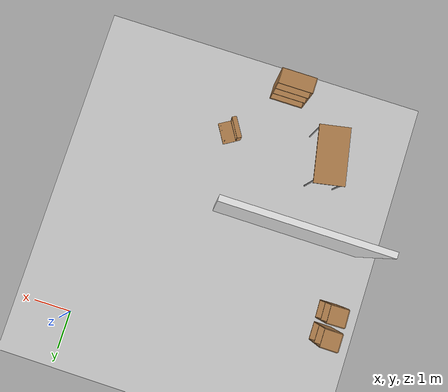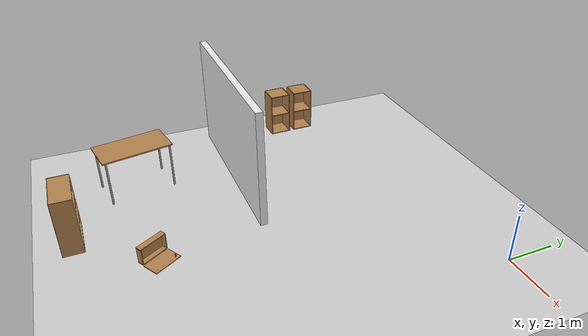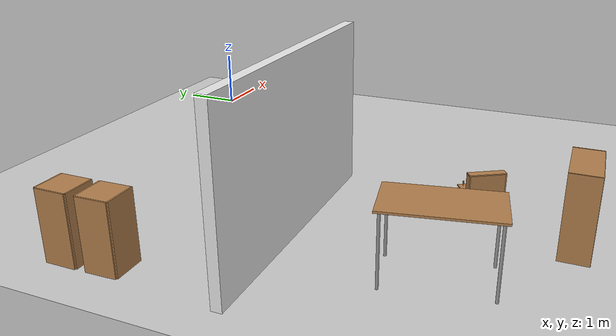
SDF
<sdf version="1.6">
 <world name="default">
  <model name="ground_plane">
   <static>1</static>
   <link name="link">
    <collision name="collision">
     <geometry><plane><normal>0 0 1</normal><size>100 100</size></plane></geometry>
     <surface>
      <contact><collide_bitmask>65535</collide_bitmask></contact>
      <friction><ode><mu>100</mu><mu2>50</mu2></ode></friction>
     </surface>
    </collision>
    <visual name="visual">
     <cast_shadows>0</cast_shadows>
     <geometry><plane><normal>0 0 1</normal><size>100 100</size></plane></geometry>
     <material>
      <script><uri>file://media/materials/scripts/gazebo.material</uri><name>Gazebo/Grey</name></script>
     </material>
    </visual>
   </link>
  </model>
  <model name="table_3">
   <static>1</static>
   <link name="link">
    <collision name="surface">
     <pose>0 0 1 0 -0 0</pose>
     <geometry><box><size>1.5 0.8 0.03</size></box></geometry>
     <surface><friction><ode><mu>0.6</mu><mu2>0.6</mu2></ode></friction></surface>
    </collision>
    <visual name="visual1">
     <pose>0 0 1 0 -0 0</pose>
     <geometry><box><size>1.5 0.8 0.03</size></box></geometry>
     <material>
      <script><uri>file://media/materials/scripts/gazebo.material</uri><name>Gazebo/Wood</name></script>
     </material>
    </visual>
    <collision name="front_left_leg">
     <pose>0.68 0.38 0.5 0 -0 0</pose>
     <geometry><cylinder><radius>0.02</radius><length>1</length></cylinder></geometry>
    </collision>
    <visual name="front_left_leg">
     <pose>0.68 0.38 0.5 0 -0 0</pose>
     <geometry><cylinder><radius>0.02</radius><length>1</length></cylinder></geometry>
     <material>
      <script><uri>file://media/materials/scripts/gazebo.material</uri><name>Gazebo/Grey</name></script>
     </material>
    </visual>
    <collision name="front_right_leg">
     <pose>0.68 -0.38 0.5 0 -0 0</pose>
     <geometry><cylinder><radius>0.02</radius><length>1</length></cylinder></geometry>
    </collision>
    <visual name="front_right_leg">
     <pose>0.68 -0.38 0.5 0 -0 0</pose>
     <geometry><cylinder><radius>0.02</radius><length>1</length></cylinder></geometry>
     <material>
      <script><uri>file://media/materials/scripts/gazebo.material</uri><name>Gazebo/Grey</name></script>
     </material>
    </visual>
    <collision name="back_right_leg">
     <pose>-0.68 -0.38 0.5 0 -0 0</pose>
     <geometry><cylinder><radius>0.02</radius><length>1</length></cylinder></geometry>
    </collision>
    <visual name="back_right_leg">
     <pose>-0.68 -0.38 0.5 0 -0 0</pose>
     <geometry><cylinder><radius>0.02</radius><length>1</length></cylinder></geometry>
     <material>
      <script><uri>file://media/materials/scripts/gazebo.material</uri><name>Gazebo/Grey</name></script>
     </material>
    </visual>
    <collision name="back_left_leg">
     <pose>-0.68 0.38 0.5 0 -0 0</pose>
     <geometry><cylinder><radius>0.02</radius><length>1</length></cylinder></geometry>
    </collision>
    <visual name="back_left_leg">
     <pose>-0.68 0.38 0.5 0 -0 0</pose>
     <geometry><cylinder><radius>0.02</radius><length>1</length></cylinder></geometry>
     <material>
      <script><uri>file://media/materials/scripts/gazebo.material</uri><name>Gazebo/Grey</name></script>
     </material>
    </visual>
   </link>
   <pose>-5.14548 -5.86576 0 0 0 -1.38337</pose>
  </model>
  <model name="wooden_case_wooden_peg">
   <link name="wooden_case::base">
    <pose>0 0 0.024 0 -0 0</pose>
    <inertial>
     <pose>-0.022184 0 0.171592 0 -0 0</pose>
     <mass>3.96264</mass>
     <inertia>
      <ixx>0.213536</ixx>
      <ixy>0</ixy>
      <ixz>0.000779377</ixz>
      <iyy>0.0708943</iyy>
      <iyz>0</iyz>
      <izz>0.154604</izz>
     </inertia>
    </inertial>
    <collision name="collision_back">
     <pose>-0.053975 0 0.1778 0 -0 0</pose>
     <geometry><box><size>0.01905 0.5461 0.3175</size></box></geometry>
     <surface>
      <contact>
       <poissons_ratio>0.347</poissons_ratio>
       <elastic_modulus>8.8e+09</elastic_modulus>
       <ode><kp>100000</kp><kd>100</kd><max_vel>100</max_vel><min_depth>0.001</min_depth></ode>
      </contact>
      <friction>
       <torsional>
        <coefficient>1</coefficient>
        <use_patch_radius>0</use_patch_radius>
        <surface_radius>0.01</surface_radius>
       </torsional>
      </friction>
     </surface>
    </collision>
    <visual name="visual_back">
     <pose>-0.053975 0 0.1778 0 -0 0</pose>
     <geometry><box><size>0.01905 0.5461 0.3175</size></box></geometry>
     <material>
      <script><uri>file://media/materials/scripts/gazebo.material</uri><name>Gazebo/Wood</name></script>
     </material>
    </visual>
    <collision name="collision_bottom">
     <pose>0 0 0.009525 0 -0 0</pose>
     <geometry><box><size>0.127 0.5842 0.01905</size></box></geometry>
     <surface>
      <contact>
       <poissons_ratio>0.347</poissons_ratio>
       <elastic_modulus>8.8e+09</elastic_modulus>
       <ode><kp>100000</kp><kd>100</kd><max_vel>100</max_vel><min_depth>0.001</min_depth></ode>
      </contact>
      <friction>
       <torsional>
        <coefficient>1</coefficient>
        <use_patch_radius>0</use_patch_radius>
        <surface_radius>0.01</surface_radius>
       </torsional>
      </friction>
     </surface>
    </collision>
    <visual name="visual_bottom">
     <pose>0 0 0.009525 0 -0 0</pose>
     <geometry><box><size>0.127 0.5842 0.01905</size></box></geometry>
     <material>
      <script><uri>file://media/materials/scripts/gazebo.material</uri><name>Gazebo/Wood</name></script>
     </material>
    </visual>
    <collision name="collision_top">
     <pose>0 0 0.346075 0 -0 0</pose>
     <geometry><box><size>0.127 0.5842 0.01905</size></box></geometry>
     <surface>
      <contact>
       <poissons_ratio>0.347</poissons_ratio>
       <elastic_modulus>8.8e+09</elastic_modulus>
       <ode><kp>100000</kp><kd>100</kd><max_vel>100</max_vel><min_depth>0.001</min_depth></ode>
      </contact>
      <friction>
       <torsional>
        <coefficient>1</coefficient>
        <use_patch_radius>0</use_patch_radius>
        <surface_radius>0.01</surface_radius>
       </torsional>
      </friction>
     </surface>
    </collision>
    <visual name="visual_top">
     <pose>0 0 0.346075 0 -0 0</pose>
     <geometry><box><size>0.127 0.5842 0.01905</size></box></geometry>
     <material>
      <script><uri>file://media/materials/scripts/gazebo.material</uri><name>Gazebo/Wood</name></script>
     </material>
    </visual>
    <collision name="collision_left">
     <pose>0 -0.282575 0.1778 0 -0 0</pose>
     <geometry><box><size>0.127 0.01905 0.3175</size></box></geometry>
     <surface>
      <contact>
       <poissons_ratio>0.347</poissons_ratio>
       <elastic_modulus>8.8e+09</elastic_modulus>
       <ode><kp>100000</kp><kd>100</kd><max_vel>100</max_vel><min_depth>0.001</min_depth></ode>
      </contact>
      <friction>
       <torsional>
        <coefficient>1</coefficient>
        <use_patch_radius>0</use_patch_radius>
        <surface_radius>0.01</surface_radius>
       </torsional>
      </friction>
     </surface>
    </collision>
    <visual name="visual_left">
     <pose>0 -0.282575 0.1778 0 -0 0</pose>
     <geometry><box><size>0.127 0.01905 0.3175</size></box></geometry>
     <material>
      <script><uri>file://media/materials/scripts/gazebo.material</uri><name>Gazebo/Wood</name></script>
     </material>
    </visual>
    <collision name="collision_right">
     <pose>0 0.282575 0.1778 0 -0 0</pose>
     <geometry><box><size>0.127 0.01905 0.3175</size></box></geometry>
     <surface>
      <contact>
       <poissons_ratio>0.347</poissons_ratio>
       <elastic_modulus>8.8e+09</elastic_modulus>
       <ode><kp>100000</kp><kd>100</kd><max_vel>100</max_vel><min_depth>0.001</min_depth></ode>
      </contact>
      <friction>
       <torsional>
        <coefficient>1</coefficient>
        <use_patch_radius>0</use_patch_radius>
        <surface_radius>0.01</surface_radius>
       </torsional>
      </friction>
     </surface>
    </collision>
    <visual name="visual_right">
     <pose>0 0.282575 0.1778 0 -0 0</pose>
     <geometry><box><size>0.127 0.01905 0.3175</size></box></geometry>
     <material>
      <script><uri>file://media/materials/scripts/gazebo.material</uri><name>Gazebo/Wood</name></script>
     </material>
    </visual>
    <collision name="collision_block_left">
     <pose>0.0095 -0.2151 -0.012 0 -0 0</pose>
     <geometry><box><size>0.108 0.05 0.024</size></box></geometry>
     <surface>
      <contact>
       <poissons_ratio>0.347</poissons_ratio>
       <elastic_modulus>8.8e+09</elastic_modulus>
       <ode><kp>100000</kp><kd>100</kd><max_vel>100</max_vel><min_depth>0.001</min_depth></ode>
      </contact>
      <friction>
       <torsional>
        <coefficient>1</coefficient>
        <use_patch_radius>0</use_patch_radius>
        <surface_radius>0.01</surface_radius>
       </torsional>
      </friction>
     </surface>
    </collision>
    <visual name="visual_block_left">
     <pose>0.0095 -0.2151 -0.012 0 -0 0</pose>
     <geometry><box><size>0.108 0.05 0.024</size></box></geometry>
     <material>
      <script><uri>file://media/materials/scripts/gazebo.material</uri><name>Gazebo/Wood</name></script>
     </material>
    </visual>
    <collision name="collision_block_right">
     <pose>0.0095 0.2151 -0.012 0 -0 0</pose>
     <geometry><box><size>0.108 0.05 0.024</size></box></geometry>
     <surface>
      <contact>
       <poissons_ratio>0.347</poissons_ratio>
       <elastic_modulus>8.8e+09</elastic_modulus>
       <ode><kp>100000</kp><kd>100</kd><max_vel>100</max_vel><min_depth>0.001</min_depth></ode>
      </contact>
      <friction>
       <torsional>
        <coefficient>1</coefficient>
        <use_patch_radius>0</use_patch_radius>
        <surface_radius>0.01</surface_radius>
       </torsional>
      </friction>
     </surface>
    </collision>
    <visual name="visual_block_right">
     <pose>0.0095 0.2151 -0.012 0 -0 0</pose>
     <geometry><box><size>0.108 0.05 0.024</size></box></geometry>
     <material>
      <script><uri>file://media/materials/scripts/gazebo.material</uri><name>Gazebo/Wood</name></script>
     </material>
    </visual>
   </link>
   <link name="wooden_case::lid">
    <pose>0.243775 0 0.009525 0 -0 0</pose>
    <inertial>
     <mass>1.97874</mass>
     <inertia>
      <ixx>0.0563367</ixx>
      <ixy>0</ixy>
      <ixz>0</ixz>
      <iyy>0.020911</iyy>
      <iyz>0</iyz>
      <izz>0.0771281</izz>
     </inertia>
    </inertial>
    <collision name="collision">
     <geometry><box><size>0.3556 0.5842 0.01905</size></box></geometry>
     <surface>
      <contact>
       <poissons_ratio>0.347</poissons_ratio>
       <elastic_modulus>8.8e+09</elastic_modulus>
       <ode><kp>100000</kp><kd>100</kd><max_vel>100</max_vel><min_depth>0.001</min_depth></ode>
      </contact>
      <friction>
       <torsional>
        <coefficient>1</coefficient>
        <use_patch_radius>0</use_patch_radius>
        <surface_radius>0.01</surface_radius>
       </torsional>
      </friction>
     </surface>
    </collision>
    <visual name="visual">
     <geometry><box><size>0.3556 0.5842 0.01905</size></box></geometry>
     <material>
      <script><uri>file://media/materials/scripts/gazebo.material</uri><name>Gazebo/Wood</name></script>
     </material>
    </visual>
    <visual name="tee_nut_1">
     <pose>0.122 -0.216 0 0 -0 0</pose>
     <geometry><cylinder><radius>0.00635</radius><length>0.0192405</length></cylinder></geometry>
     <material>
      <script><uri>file://media/materials/scripts/gazebo.material</uri><name>Gazebo/Grey</name></script>
     </material>
    </visual>
    <visual name="tee_nut_2">
     <pose>0.122 -0.088 0 0 -0 0</pose>
     <geometry><cylinder><radius>0.00635</radius><length>0.0192405</length></cylinder></geometry>
     <material>
      <script><uri>file://media/materials/scripts/gazebo.material</uri><name>Gazebo/Grey</name></script>
     </material>
    </visual>
    <visual name="tee_nut_3">
     <pose>0.122 0.088 0 0 -0 0</pose>
     <geometry><cylinder><radius>0.00635</radius><length>0.0192405</length></cylinder></geometry>
     <material>
      <script><uri>file://media/materials/scripts/gazebo.material</uri><name>Gazebo/Grey</name></script>
     </material>
    </visual>
    <visual name="tee_nut_4">
     <pose>0.122 0.216 0 0 -0 0</pose>
     <geometry><cylinder><radius>0.00635</radius><length>0.0192405</length></cylinder></geometry>
     <material>
      <script><uri>file://media/materials/scripts/gazebo.material</uri><name>Gazebo/Grey</name></script>
     </material>
    </visual>
   </link>
   <joint name="wooden_case::lid_hinge" type="revolute">
    <pose>-0.1778 0 0.01905 0 -0 0</pose>
    <parent>wooden_case::base</parent>
    <child>wooden_case::lid</child>
    <axis>
     <xyz>0 1 0</xyz>
     <limit><upper>0.523599</upper><lower>-1.5708</lower></limit>
     <dynamics><spring_reference>0</spring_reference><spring_stiffness>0</spring_stiffness></dynamics>
    </axis>
   </joint>
   <link name="peg::link">
    <pose>0.365774 0.216 0.05905 0 -0 0</pose>
    <inertial>
     <mass>0.0175</mass>
     <inertia>
      <ixx>9.74923e-06</ixx>
      <ixy>0</ixy>
      <ixz>0</ixz>
      <iyy>9.74923e-06</iyy>
      <iyz>0</iyz>
      <izz>8.31797e-07</izz>
     </inertia>
    </inertial>
    <collision name="collision">
     <geometry><cylinder><radius>0.00975</radius><length>0.08</length></cylinder></geometry>
     <surface>
      <contact>
       <poissons_ratio>0.347</poissons_ratio>
       <elastic_modulus>8.8e+09</elastic_modulus>
       <ode><kp>100000</kp><kd>100</kd><max_vel>100</max_vel><min_depth>0.001</min_depth></ode>
      </contact>
      <friction>
       <torsional>
        <coefficient>1</coefficient>
        <use_patch_radius>0</use_patch_radius>
        <surface_radius>0.01</surface_radius>
       </torsional>
      </friction>
     </surface>
    </collision>
    <visual name="visual">
     <geometry><cylinder><radius>0.00975</radius><length>0.08</length></cylinder></geometry>
     <material>
      <script><uri>file://media/materials/scripts/gazebo.material</uri><name>Gazebo/Wood</name></script>
     </material>
    </visual>
   </link>
   <joint name="case_peg" type="revolute">
    <child>peg::link</child>
    <parent>wooden_case::lid</parent>
    <axis>
     <xyz>0 0 1</xyz>
     <limit><upper>0</upper><lower>0</lower></limit>
     <dynamics><spring_reference>0</spring_reference><spring_stiffness>0</spring_stiffness></dynamics>
    </axis>
   </joint>
   <pose>-2.6749 -5.99193 -0.001058 -1e-06 -0.000498 0.544065</pose>
  </model>
  <model name="bookshelf_clone_clone_clone">
   <static>1</static>
   <link name="link">
    <inertial><mass>1</mass></inertial>
    <collision name="back">
     <pose>0 0.005 0.6 0 -0 0</pose>
     <geometry><box><size>0.9 0.01 1.2</size></box></geometry>
    </collision>
    <visual name="visual1">
     <pose>0 0.005 0.6 0 -0 0</pose>
     <geometry><box><size>0.9 0.01 1.2</size></box></geometry>
     <material>
      <script><uri>file://media/materials/scripts/gazebo.material</uri><name>Gazebo/Wood</name></script>
     </material>
    </visual>
    <collision name="left_side">
     <pose>0.45 -0.195 0.6 0 -0 0</pose>
     <geometry><box><size>0.02 0.4 1.2</size></box></geometry>
    </collision>
    <visual name="visual2">
     <pose>0.45 -0.195 0.6 0 -0 0</pose>
     <geometry><box><size>0.02 0.4 1.2</size></box></geometry>
     <material>
      <script><uri>file://media/materials/scripts/gazebo.material</uri><name>Gazebo/Wood</name></script>
     </material>
    </visual>
    <collision name="right_side">
     <pose>-0.45 -0.195 0.6 0 -0 0</pose>
     <geometry><box><size>0.02 0.4 1.2</size></box></geometry>
    </collision>
    <visual name="visual3">
     <pose>-0.45 -0.195 0.6 0 -0 0</pose>
     <geometry><box><size>0.02 0.4 1.2</size></box></geometry>
     <material>
      <script><uri>file://media/materials/scripts/gazebo.material</uri><name>Gazebo/Wood</name></script>
     </material>
    </visual>
    <collision name="bottom">
     <pose>0 -0.195 0.03 0 -0 0</pose>
     <geometry><box><size>0.88 0.4 0.06</size></box></geometry>
    </collision>
    <visual name="visual4">
     <pose>0 -0.195 0.03 0 -0 0</pose>
     <geometry><box><size>0.88 0.4 0.06</size></box></geometry>
     <material>
      <script><uri>file://media/materials/scripts/gazebo.material</uri><name>Gazebo/Wood</name></script>
     </material>
    </visual>
    <collision name="top">
     <pose>0 -0.195 1.19 0 -0 0</pose>
     <geometry><box><size>0.88 0.4 0.02</size></box></geometry>
    </collision>
    <visual name="visual5">
     <pose>0 -0.195 1.19 0 -0 0</pose>
     <geometry><box><size>0.88 0.4 0.02</size></box></geometry>
     <material>
      <script><uri>file://media/materials/scripts/gazebo.material</uri><name>Gazebo/Wood</name></script>
     </material>
    </visual>
    <collision name="low_shelf">
     <pose>0 -0.195 0.43 0 -0 0</pose>
     <geometry><box><size>0.88 0.4 0.02</size></box></geometry>
    </collision>
    <visual name="visual6">
     <pose>0 -0.195 0.43 0 -0 0</pose>
     <geometry><box><size>0.88 0.4 0.02</size></box></geometry>
     <material>
      <script><uri>file://media/materials/scripts/gazebo.material</uri><name>Gazebo/Wood</name></script>
     </material>
    </visual>
    <collision name="high_shelf">
     <pose>0 -0.195 0.8 0 -0 0</pose>
     <geometry><box><size>0.88 0.4 0.02</size></box></geometry>
    </collision>
    <visual name="visual7">
     <pose>0 -0.195 0.8 0 -0 0</pose>
     <geometry><box><size>0.88 0.4 0.02</size></box></geometry>
     <material>
      <script><uri>file://media/materials/scripts/gazebo.material</uri><name>Gazebo/Wood</name></script>
     </material>
    </visual>
   </link>
   <pose>-3.74721 -7.53362 0 0 -0 3.14159</pose>
  </model>
  <model name="cabinet_clone_1">
   <static>1</static>
   <link name="cabinet_bottom_plate">
    <inertial>
     <pose>0 0 -1 0 -0 0</pose>
     <inertia><ixx>2.05</ixx><ixy>0</ixy><ixz>0</ixz><iyy>2.05</iyy><iyz>0</iyz><izz>2.05</izz></inertia>
     <mass>25</mass>
    </inertial>
    <collision name="cabinet_bottom_plate_geom">
     <pose>0 0 0.01 0 -0 0</pose>
     <geometry><box><size>0.45 0.45 0.02</size></box></geometry>
    </collision>
    <visual name="cabinet_bottom_plate_geom_visual">
     <pose>0 0 0.01 0 -0 0</pose>
     <geometry><box><size>0.45 0.45 0.02</size></box></geometry>
     <material>
      <script><uri>file://media/materials/scripts/gazebo.material</uri><name>Gazebo/Wood</name></script>
     </material>
    </visual>
    <collision name="cabinet_bottom_plate_geom_cabinet_back_plate">
     <pose>0.235 0 0.51 0 -0 0</pose>
     <geometry><box><size>0.02 0.45 1.02</size></box></geometry>
    </collision>
    <visual name="cabinet_bottom_plate_geom_cabinet_back_plate_visual">
     <pose>0.235 0 0.51 0 -0 0</pose>
     <geometry><box><size>0.02 0.45 1.02</size></box></geometry>
     <material>
      <script><uri>file://media/materials/scripts/gazebo.material</uri><name>Gazebo/Wood</name></script>
     </material>
    </visual>
    <collision name="cabinet_bottom_plate_geom_cabinet_left_plate">
     <pose>0 0.235 0.51 0 -0 0</pose>
     <geometry><box><size>0.45 0.02 1.02</size></box></geometry>
    </collision>
    <visual name="cabinet_bottom_plate_geom_cabinet_left_plate_visual">
     <pose>0 0.235 0.51 0 -0 0</pose>
     <geometry><box><size>0.45 0.02 1.02</size></box></geometry>
     <material>
      <script><uri>file://media/materials/scripts/gazebo.material</uri><name>Gazebo/Wood</name></script>
     </material>
    </visual>
    <collision name="cabinet_bottom_plate_geom_cabinet_middle_plate">
     <pose>0 0 0.51 0 -0 0</pose>
     <geometry><box><size>0.45 0.45 0.02</size></box></geometry>
    </collision>
    <visual name="cabinet_bottom_plate_geom_cabinet_middle_plate_visual">
     <pose>0 0 0.51 0 -0 0</pose>
     <geometry><box><size>0.45 0.45 0.02</size></box></geometry>
     <material>
      <script><uri>file://media/materials/scripts/gazebo.material</uri><name>Gazebo/Wood</name></script>
     </material>
    </visual>
    <collision name="cabinet_bottom_plate_geom_cabinet_right_plate">
     <pose>0 -0.235 0.51 0 -0 0</pose>
     <geometry><box><size>0.45 0.02 1.02</size></box></geometry>
    </collision>
    <visual name="cabinet_bottom_plate_geom_cabinet_right_plate_visual">
     <pose>0 -0.235 0.51 0 -0 0</pose>
     <geometry><box><size>0.45 0.02 1.02</size></box></geometry>
     <material>
      <script><uri>file://media/materials/scripts/gazebo.material</uri><name>Gazebo/Wood</name></script>
     </material>
    </visual>
    <collision name="cabinet_bottom_plate_geom_cabinet_top_plate">
     <pose>0 0 1.01 0 -0 0</pose>
     <geometry><box><size>0.45 0.45 0.02</size></box></geometry>
    </collision>
    <visual name="cabinet_bottom_plate_geom_cabinet_top_plate_visual">
     <pose>0 0 1.01 0 -0 0</pose>
     <geometry><box><size>0.45 0.45 0.02</size></box></geometry>
     <material>
      <script><uri>file://media/materials/scripts/gazebo.material</uri><name>Gazebo/Wood</name></script>
     </material>
    </visual>
   </link>
   <pose>-6.41626 -2.11223 0 0 0 -3.11673</pose>
  </model>
  <model name="cabinet_clone_1_clone">
   <static>1</static>
   <link name="cabinet_bottom_plate">
    <inertial>
     <pose>0 0 -1 0 -0 0</pose>
     <inertia><ixx>2.05</ixx><ixy>0</ixy><ixz>0</ixz><iyy>2.05</iyy><iyz>0</iyz><izz>2.05</izz></inertia>
     <mass>25</mass>
    </inertial>
    <collision name="cabinet_bottom_plate_geom">
     <pose>0 0 0.01 0 -0 0</pose>
     <geometry><box><size>0.45 0.45 0.02</size></box></geometry>
    </collision>
    <visual name="cabinet_bottom_plate_geom_visual">
     <pose>0 0 0.01 0 -0 0</pose>
     <geometry><box><size>0.45 0.45 0.02</size></box></geometry>
     <material>
      <script><uri>file://media/materials/scripts/gazebo.material</uri><name>Gazebo/Wood</name></script>
     </material>
    </visual>
    <collision name="cabinet_bottom_plate_geom_cabinet_back_plate">
     <pose>0.235 0 0.51 0 -0 0</pose>
     <geometry><box><size>0.02 0.45 1.02</size></box></geometry>
    </collision>
    <visual name="cabinet_bottom_plate_geom_cabinet_back_plate_visual">
     <pose>0.235 0 0.51 0 -0 0</pose>
     <geometry><box><size>0.02 0.45 1.02</size></box></geometry>
     <material>
      <script><uri>file://media/materials/scripts/gazebo.material</uri><name>Gazebo/Wood</name></script>
     </material>
    </visual>
    <collision name="cabinet_bottom_plate_geom_cabinet_left_plate">
     <pose>0 0.235 0.51 0 -0 0</pose>
     <geometry><box><size>0.45 0.02 1.02</size></box></geometry>
    </collision>
    <visual name="cabinet_bottom_plate_geom_cabinet_left_plate_visual">
     <pose>0 0.235 0.51 0 -0 0</pose>
     <geometry><box><size>0.45 0.02 1.02</size></box></geometry>
     <material>
      <script><uri>file://media/materials/scripts/gazebo.material</uri><name>Gazebo/Wood</name></script>
     </material>
    </visual>
    <collision name="cabinet_bottom_plate_geom_cabinet_middle_plate">
     <pose>0 0 0.51 0 -0 0</pose>
     <geometry><box><size>0.45 0.45 0.02</size></box></geometry>
    </collision>
    <visual name="cabinet_bottom_plate_geom_cabinet_middle_plate_visual">
     <pose>0 0 0.51 0 -0 0</pose>
     <geometry><box><size>0.45 0.45 0.02</size></box></geometry>
     <material>
      <script><uri>file://media/materials/scripts/gazebo.material</uri><name>Gazebo/Wood</name></script>
     </material>
    </visual>
    <collision name="cabinet_bottom_plate_geom_cabinet_right_plate">
     <pose>0 -0.235 0.51 0 -0 0</pose>
     <geometry><box><size>0.45 0.02 1.02</size></box></geometry>
    </collision>
    <visual name="cabinet_bottom_plate_geom_cabinet_right_plate_visual">
     <pose>0 -0.235 0.51 0 -0 0</pose>
     <geometry><box><size>0.45 0.02 1.02</size></box></geometry>
     <material>
      <script><uri>file://media/materials/scripts/gazebo.material</uri><name>Gazebo/Wood</name></script>
     </material>
    </visual>
    <collision name="cabinet_bottom_plate_geom_cabinet_top_plate">
     <pose>0 0 1.01 0 -0 0</pose>
     <geometry><box><size>0.45 0.45 0.02</size></box></geometry>
    </collision>
    <visual name="cabinet_bottom_plate_geom_cabinet_top_plate_visual">
     <pose>0 0 1.01 0 -0 0</pose>
     <geometry><box><size>0.45 0.45 0.02</size></box></geometry>
     <material>
      <script><uri>file://media/materials/scripts/gazebo.material</uri><name>Gazebo/Wood</name></script>
     </material>
    </visual>
   </link>
   <pose>-6.42739 -1.5135 0 0 -0 3.14159</pose>
  </model>
  <model name="my_building_0">
   <link name="Wall_19">
    <pose>-6.83194 -3.42537 0 0 -0 3.14159</pose>
    <inertial>
     <mass>1</mass>
     <inertia><ixx>1</ixx><ixy>0</ixy><ixz>0</ixz><iyy>1</iyy><iyz>0</iyz><izz>1</izz></inertia>
    </inertial>
    <visual name="Wall_19_Visual">
     <pose>0 0 1.25 0 -0 0</pose>
     <geometry><box><size>4 0.15 2.5</size></box></geometry>
     <material>
      <script><uri>file://media/materials/scripts/gazebo.material</uri><name>Gazebo/White</name></script>
      <ambient>1 1 1 1</ambient>
      <diffuse>1 1 1 1</diffuse>
      <specular>0.2 0.2 0.2 1</specular>
      <emissive>0 0 0 1</emissive>
      <shader type="pixel"><normal_map>__default__</normal_map></shader>
     </material>
     <meta><layer>0</layer></meta>
    </visual>
    <collision name="Wall_19_Collision">
     <pose>0 0 1.25 0 -0 0</pose>
     <geometry><box><size>4 0.15 2.5</size></box></geometry>
     <surface>
      <friction>
       <ode><mu>1</mu><mu2>1</mu2><fdir1>0 0 0</fdir1><slip1>0</slip1><slip2>0</slip2></ode>
       <torsional>
        <coefficient>1</coefficient>
        <patch_radius>0</patch_radius>
        <surface_radius>0</surface_radius>
        <use_patch_radius>1</use_patch_radius>
        <ode><slip>0</slip></ode>
       </torsional>
      </friction>
      <bounce><restitution_coefficient>0</restitution_coefficient><threshold>1e+06</threshold></bounce>
      <contact>
       <collide_without_contact>0</collide_without_contact>
       <collide_without_contact_bitmask>1</collide_without_contact_bitmask>
       <collide_bitmask>1</collide_bitmask>
       <ode>
        <soft_cfm>0</soft_cfm>
        <soft_erp>0.2</soft_erp>
        <kp>1e+13</kp>
        <kd>1</kd>
        <max_vel>0.01</max_vel>
        <min_depth>0</min_depth>
       </ode>
       <bullet>
        <split_impulse>1</split_impulse>
        <split_impulse_penetration_threshold>-0.01</split_impulse_penetration_threshold>
        <soft_cfm>0</soft_cfm>
        <soft_erp>0.2</soft_erp>
        <kp>1e+13</kp>
        <kd>1</kd>
       </bullet>
      </contact>
     </surface>
    </collision>
   </link>
   <static>1</static>
   <pose>2.08113 -0.36477 0 0 -0 0</pose>
  </model>
 </world>
</sdf>
